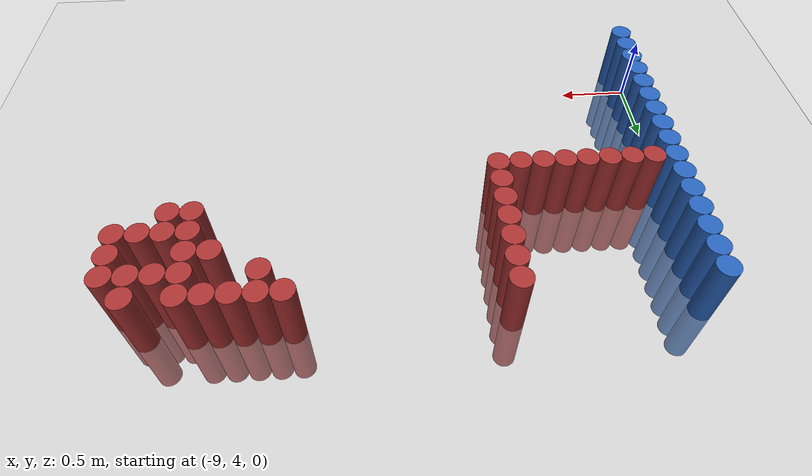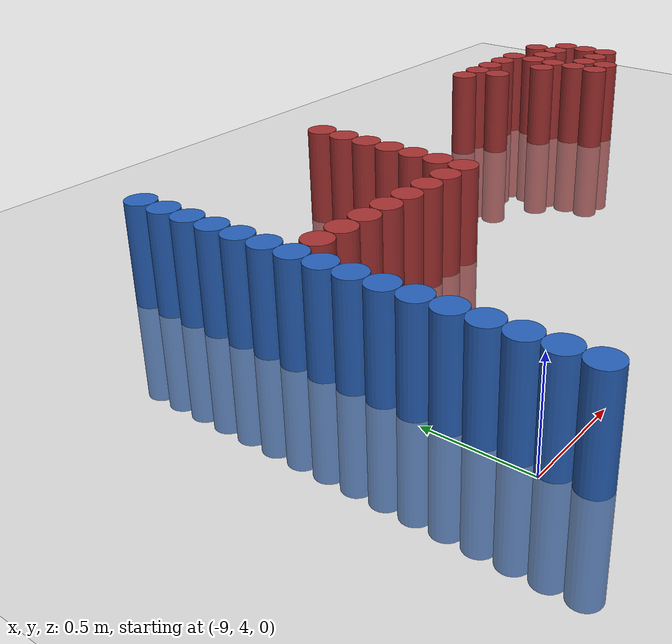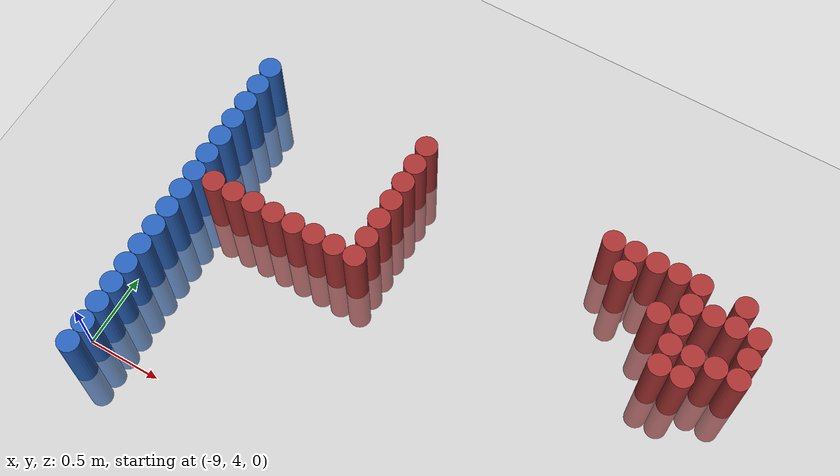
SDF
<sdf version="1.6">
 <world name="default">
  <model name="ground_plane">
   <static>1</static>
   <link name="link">
    <collision name="collision">
     <geometry><plane><normal>0 0 1</normal><size>100 100</size></plane></geometry>
     <surface><friction><ode><mu>100</mu><mu2>50</mu2></ode></friction></surface>
    </collision>
    <visual name="visual">
     <cast_shadows>0</cast_shadows>
     <geometry><plane><normal>0 0 1</normal><size>100 100</size></plane></geometry>
     <material>
      <script><uri>file://media/materials/scripts/gazebo.material</uri><name>Gazebo/Grey</name></script>
     </material>
    </visual>
   </link>
  </model>
  <model name="unit_cylinder_108">
   <static>1</static>
   <pose>-8.925000 3.825000 0.000000 0.000000 0.000000 0.000000</pose>
   <link name="link">
    <inertial>
     <mass>1</mass>
     <inertia><ixx>0.145833</ixx><ixy>0</ixy><ixz>0</ixz><iyy>0.145833</iyy><iyz>0</iyz><izz>0.125</izz></inertia>
    </inertial>
    <collision name="collision">
     <geometry><cylinder><radius>0.075000</radius><length>1</length></cylinder></geometry>
    </collision>
    <visual name="visual">
     <geometry><cylinder><radius>0.075000</radius><length>1</length></cylinder></geometry>
     <material>
      <ambient>0.152000 0.379000 0.720000 1</ambient>
      <diffuse>0.152000 0.379000 0.720000 1</diffuse>
     </material>
     <material>
      <script><name>Gazebo/Grey</name><uri>file://media/materials/scripts/gazebo.material</uri></script>
     </material>
    </visual>
   </link>
  </model>
  <model name="unit_cylinder_110">
   <static>1</static>
   <pose>-8.925000 3.975000 0.000000 0.000000 0.000000 0.000000</pose>
   <link name="link">
    <inertial>
     <mass>1</mass>
     <inertia><ixx>0.145833</ixx><ixy>0</ixy><ixz>0</ixz><iyy>0.145833</iyy><iyz>0</iyz><izz>0.125</izz></inertia>
    </inertial>
    <collision name="collision">
     <geometry><cylinder><radius>0.075000</radius><length>1</length></cylinder></geometry>
    </collision>
    <visual name="visual">
     <geometry><cylinder><radius>0.075000</radius><length>1</length></cylinder></geometry>
     <material>
      <ambient>0.152000 0.379000 0.720000 1</ambient>
      <diffuse>0.152000 0.379000 0.720000 1</diffuse>
     </material>
     <material>
      <script><name>Gazebo/Grey</name><uri>file://media/materials/scripts/gazebo.material</uri></script>
     </material>
    </visual>
   </link>
  </model>
  <model name="unit_cylinder_112">
   <static>1</static>
   <pose>-8.925000 4.125000 0.000000 0.000000 0.000000 0.000000</pose>
   <link name="link">
    <inertial>
     <mass>1</mass>
     <inertia><ixx>0.145833</ixx><ixy>0</ixy><ixz>0</ixz><iyy>0.145833</iyy><iyz>0</iyz><izz>0.125</izz></inertia>
    </inertial>
    <collision name="collision">
     <geometry><cylinder><radius>0.075000</radius><length>1</length></cylinder></geometry>
    </collision>
    <visual name="visual">
     <geometry><cylinder><radius>0.075000</radius><length>1</length></cylinder></geometry>
     <material>
      <ambient>0.152000 0.379000 0.720000 1</ambient>
      <diffuse>0.152000 0.379000 0.720000 1</diffuse>
     </material>
     <material>
      <script><name>Gazebo/Grey</name><uri>file://media/materials/scripts/gazebo.material</uri></script>
     </material>
    </visual>
   </link>
  </model>
  <model name="unit_cylinder_114">
   <static>1</static>
   <pose>-8.925000 4.275000 0.000000 0.000000 0.000000 0.000000</pose>
   <link name="link">
    <inertial>
     <mass>1</mass>
     <inertia><ixx>0.145833</ixx><ixy>0</ixy><ixz>0</ixz><iyy>0.145833</iyy><iyz>0</iyz><izz>0.125</izz></inertia>
    </inertial>
    <collision name="collision">
     <geometry><cylinder><radius>0.075000</radius><length>1</length></cylinder></geometry>
    </collision>
    <visual name="visual">
     <geometry><cylinder><radius>0.075000</radius><length>1</length></cylinder></geometry>
     <material>
      <ambient>0.152000 0.379000 0.720000 1</ambient>
      <diffuse>0.152000 0.379000 0.720000 1</diffuse>
     </material>
     <material>
      <script><name>Gazebo/Grey</name><uri>file://media/materials/scripts/gazebo.material</uri></script>
     </material>
    </visual>
   </link>
  </model>
  <model name="unit_cylinder_116">
   <static>1</static>
   <pose>-8.925000 4.425000 0.000000 0.000000 0.000000 0.000000</pose>
   <link name="link">
    <inertial>
     <mass>1</mass>
     <inertia><ixx>0.145833</ixx><ixy>0</ixy><ixz>0</ixz><iyy>0.145833</iyy><iyz>0</iyz><izz>0.125</izz></inertia>
    </inertial>
    <collision name="collision">
     <geometry><cylinder><radius>0.075000</radius><length>1</length></cylinder></geometry>
    </collision>
    <visual name="visual">
     <geometry><cylinder><radius>0.075000</radius><length>1</length></cylinder></geometry>
     <material>
      <ambient>0.152000 0.379000 0.720000 1</ambient>
      <diffuse>0.152000 0.379000 0.720000 1</diffuse>
     </material>
     <material>
      <script><name>Gazebo/Grey</name><uri>file://media/materials/scripts/gazebo.material</uri></script>
     </material>
    </visual>
   </link>
  </model>
  <model name="unit_cylinder_118">
   <static>1</static>
   <pose>-8.925000 4.575000 0.000000 0.000000 0.000000 0.000000</pose>
   <link name="link">
    <inertial>
     <mass>1</mass>
     <inertia><ixx>0.145833</ixx><ixy>0</ixy><ixz>0</ixz><iyy>0.145833</iyy><iyz>0</iyz><izz>0.125</izz></inertia>
    </inertial>
    <collision name="collision">
     <geometry><cylinder><radius>0.075000</radius><length>1</length></cylinder></geometry>
    </collision>
    <visual name="visual">
     <geometry><cylinder><radius>0.075000</radius><length>1</length></cylinder></geometry>
     <material>
      <ambient>0.152000 0.379000 0.720000 1</ambient>
      <diffuse>0.152000 0.379000 0.720000 1</diffuse>
     </material>
     <material>
      <script><name>Gazebo/Grey</name><uri>file://media/materials/scripts/gazebo.material</uri></script>
     </material>
    </visual>
   </link>
  </model>
  <model name="unit_cylinder_120">
   <static>1</static>
   <pose>-8.925000 4.725000 0.000000 0.000000 0.000000 0.000000</pose>
   <link name="link">
    <inertial>
     <mass>1</mass>
     <inertia><ixx>0.145833</ixx><ixy>0</ixy><ixz>0</ixz><iyy>0.145833</iyy><iyz>0</iyz><izz>0.125</izz></inertia>
    </inertial>
    <collision name="collision">
     <geometry><cylinder><radius>0.075000</radius><length>1</length></cylinder></geometry>
    </collision>
    <visual name="visual">
     <geometry><cylinder><radius>0.075000</radius><length>1</length></cylinder></geometry>
     <material>
      <ambient>0.152000 0.379000 0.720000 1</ambient>
      <diffuse>0.152000 0.379000 0.720000 1</diffuse>
     </material>
     <material>
      <script><name>Gazebo/Grey</name><uri>file://media/materials/scripts/gazebo.material</uri></script>
     </material>
    </visual>
   </link>
  </model>
  <model name="unit_cylinder_122">
   <static>1</static>
   <pose>-8.925000 4.875000 0.000000 0.000000 0.000000 0.000000</pose>
   <link name="link">
    <inertial>
     <mass>1</mass>
     <inertia><ixx>0.145833</ixx><ixy>0</ixy><ixz>0</ixz><iyy>0.145833</iyy><iyz>0</iyz><izz>0.125</izz></inertia>
    </inertial>
    <collision name="collision">
     <geometry><cylinder><radius>0.075000</radius><length>1</length></cylinder></geometry>
    </collision>
    <visual name="visual">
     <geometry><cylinder><radius>0.075000</radius><length>1</length></cylinder></geometry>
     <material>
      <ambient>0.152000 0.379000 0.720000 1</ambient>
      <diffuse>0.152000 0.379000 0.720000 1</diffuse>
     </material>
     <material>
      <script><name>Gazebo/Grey</name><uri>file://media/materials/scripts/gazebo.material</uri></script>
     </material>
    </visual>
   </link>
  </model>
  <model name="unit_cylinder_124">
   <static>1</static>
   <pose>-8.925000 5.025000 0.000000 0.000000 0.000000 0.000000</pose>
   <link name="link">
    <inertial>
     <mass>1</mass>
     <inertia><ixx>0.145833</ixx><ixy>0</ixy><ixz>0</ixz><iyy>0.145833</iyy><iyz>0</iyz><izz>0.125</izz></inertia>
    </inertial>
    <collision name="collision">
     <geometry><cylinder><radius>0.075000</radius><length>1</length></cylinder></geometry>
    </collision>
    <visual name="visual">
     <geometry><cylinder><radius>0.075000</radius><length>1</length></cylinder></geometry>
     <material>
      <ambient>0.152000 0.379000 0.720000 1</ambient>
      <diffuse>0.152000 0.379000 0.720000 1</diffuse>
     </material>
     <material>
      <script><name>Gazebo/Grey</name><uri>file://media/materials/scripts/gazebo.material</uri></script>
     </material>
    </visual>
   </link>
  </model>
  <model name="unit_cylinder_125">
   <static>1</static>
   <pose>-8.925000 5.175000 0.000000 0.000000 0.000000 0.000000</pose>
   <link name="link">
    <inertial>
     <mass>1</mass>
     <inertia><ixx>0.145833</ixx><ixy>0</ixy><ixz>0</ixz><iyy>0.145833</iyy><iyz>0</iyz><izz>0.125</izz></inertia>
    </inertial>
    <collision name="collision">
     <geometry><cylinder><radius>0.075000</radius><length>1</length></cylinder></geometry>
    </collision>
    <visual name="visual">
     <geometry><cylinder><radius>0.075000</radius><length>1</length></cylinder></geometry>
     <material>
      <ambient>0.152000 0.379000 0.720000 1</ambient>
      <diffuse>0.152000 0.379000 0.720000 1</diffuse>
     </material>
     <material>
      <script><name>Gazebo/Grey</name><uri>file://media/materials/scripts/gazebo.material</uri></script>
     </material>
    </visual>
   </link>
  </model>
  <model name="unit_cylinder_126">
   <static>1</static>
   <pose>-8.925000 5.325000 0.000000 0.000000 0.000000 0.000000</pose>
   <link name="link">
    <inertial>
     <mass>1</mass>
     <inertia><ixx>0.145833</ixx><ixy>0</ixy><ixz>0</ixz><iyy>0.145833</iyy><iyz>0</iyz><izz>0.125</izz></inertia>
    </inertial>
    <collision name="collision">
     <geometry><cylinder><radius>0.075000</radius><length>1</length></cylinder></geometry>
    </collision>
    <visual name="visual">
     <geometry><cylinder><radius>0.075000</radius><length>1</length></cylinder></geometry>
     <material>
      <ambient>0.152000 0.379000 0.720000 1</ambient>
      <diffuse>0.152000 0.379000 0.720000 1</diffuse>
     </material>
     <material>
      <script><name>Gazebo/Grey</name><uri>file://media/materials/scripts/gazebo.material</uri></script>
     </material>
    </visual>
   </link>
  </model>
  <model name="unit_cylinder_127">
   <static>1</static>
   <pose>-8.925000 5.475000 0.000000 0.000000 0.000000 0.000000</pose>
   <link name="link">
    <inertial>
     <mass>1</mass>
     <inertia><ixx>0.145833</ixx><ixy>0</ixy><ixz>0</ixz><iyy>0.145833</iyy><iyz>0</iyz><izz>0.125</izz></inertia>
    </inertial>
    <collision name="collision">
     <geometry><cylinder><radius>0.075000</radius><length>1</length></cylinder></geometry>
    </collision>
    <visual name="visual">
     <geometry><cylinder><radius>0.075000</radius><length>1</length></cylinder></geometry>
     <material>
      <ambient>0.152000 0.379000 0.720000 1</ambient>
      <diffuse>0.152000 0.379000 0.720000 1</diffuse>
     </material>
     <material>
      <script><name>Gazebo/Grey</name><uri>file://media/materials/scripts/gazebo.material</uri></script>
     </material>
    </visual>
   </link>
  </model>
  <model name="unit_cylinder_128">
   <static>1</static>
   <pose>-8.925000 5.625000 0.000000 0.000000 0.000000 0.000000</pose>
   <link name="link">
    <inertial>
     <mass>1</mass>
     <inertia><ixx>0.145833</ixx><ixy>0</ixy><ixz>0</ixz><iyy>0.145833</iyy><iyz>0</iyz><izz>0.125</izz></inertia>
    </inertial>
    <collision name="collision">
     <geometry><cylinder><radius>0.075000</radius><length>1</length></cylinder></geometry>
    </collision>
    <visual name="visual">
     <geometry><cylinder><radius>0.075000</radius><length>1</length></cylinder></geometry>
     <material>
      <ambient>0.152000 0.379000 0.720000 1</ambient>
      <diffuse>0.152000 0.379000 0.720000 1</diffuse>
     </material>
     <material>
      <script><name>Gazebo/Grey</name><uri>file://media/materials/scripts/gazebo.material</uri></script>
     </material>
    </visual>
   </link>
  </model>
  <model name="unit_cylinder_129">
   <static>1</static>
   <pose>-8.925000 5.775000 0.000000 0.000000 0.000000 0.000000</pose>
   <link name="link">
    <inertial>
     <mass>1</mass>
     <inertia><ixx>0.145833</ixx><ixy>0</ixy><ixz>0</ixz><iyy>0.145833</iyy><iyz>0</iyz><izz>0.125</izz></inertia>
    </inertial>
    <collision name="collision">
     <geometry><cylinder><radius>0.075000</radius><length>1</length></cylinder></geometry>
    </collision>
    <visual name="visual">
     <geometry><cylinder><radius>0.075000</radius><length>1</length></cylinder></geometry>
     <material>
      <ambient>0.152000 0.379000 0.720000 1</ambient>
      <diffuse>0.152000 0.379000 0.720000 1</diffuse>
     </material>
     <material>
      <script><name>Gazebo/Grey</name><uri>file://media/materials/scripts/gazebo.material</uri></script>
     </material>
    </visual>
   </link>
  </model>
  <model name="unit_cylinder_130">
   <static>1</static>
   <pose>-8.925000 5.925000 0.000000 0.000000 0.000000 0.000000</pose>
   <link name="link">
    <inertial>
     <mass>1</mass>
     <inertia><ixx>0.145833</ixx><ixy>0</ixy><ixz>0</ixz><iyy>0.145833</iyy><iyz>0</iyz><izz>0.125</izz></inertia>
    </inertial>
    <collision name="collision">
     <geometry><cylinder><radius>0.075000</radius><length>1</length></cylinder></geometry>
    </collision>
    <visual name="visual">
     <geometry><cylinder><radius>0.075000</radius><length>1</length></cylinder></geometry>
     <material>
      <ambient>0.152000 0.379000 0.720000 1</ambient>
      <diffuse>0.152000 0.379000 0.720000 1</diffuse>
     </material>
     <material>
      <script><name>Gazebo/Grey</name><uri>file://media/materials/scripts/gazebo.material</uri></script>
     </material>
    </visual>
   </link>
  </model>
  <model name="unit_cylinder_131">
   <static>1</static>
   <pose>-8.925000 6.075000 0.000000 0.000000 0.000000 0.000000</pose>
   <link name="link">
    <inertial>
     <mass>1</mass>
     <inertia><ixx>0.145833</ixx><ixy>0</ixy><ixz>0</ixz><iyy>0.145833</iyy><iyz>0</iyz><izz>0.125</izz></inertia>
    </inertial>
    <collision name="collision">
     <geometry><cylinder><radius>0.075000</radius><length>1</length></cylinder></geometry>
    </collision>
    <visual name="visual">
     <geometry><cylinder><radius>0.075000</radius><length>1</length></cylinder></geometry>
     <material>
      <ambient>0.152000 0.379000 0.720000 1</ambient>
      <diffuse>0.152000 0.379000 0.720000 1</diffuse>
     </material>
     <material>
      <script><name>Gazebo/Grey</name><uri>file://media/materials/scripts/gazebo.material</uri></script>
     </material>
    </visual>
   </link>
  </model>
  <model name="unit_cylinder_155">
   <static>1</static>
   <pose>-8.775000 5.175000 0.000000 0.000000 0.000000 0.000000</pose>
   <link name="link">
    <inertial>
     <mass>1</mass>
     <inertia><ixx>0.145833</ixx><ixy>0</ixy><ixz>0</ixz><iyy>0.145833</iyy><iyz>0</iyz><izz>0.125</izz></inertia>
    </inertial>
    <collision name="collision">
     <geometry><cylinder><radius>0.075000</radius><length>1</length></cylinder></geometry>
    </collision>
    <visual name="visual">
     <geometry><cylinder><radius>0.075000</radius><length>1</length></cylinder></geometry>
     <material>
      <ambient>0.648000 0.192000 0.192000 1</ambient>
      <diffuse>0.648000 0.192000 0.192000 1</diffuse>
     </material>
     <material>
      <script><name>Gazebo/Grey</name><uri>file://media/materials/scripts/gazebo.material</uri></script>
     </material>
    </visual>
   </link>
  </model>
  <model name="unit_cylinder_157">
   <static>1</static>
   <pose>-8.625000 5.175000 0.000000 0.000000 0.000000 0.000000</pose>
   <link name="link">
    <inertial>
     <mass>1</mass>
     <inertia><ixx>0.145833</ixx><ixy>0</ixy><ixz>0</ixz><iyy>0.145833</iyy><iyz>0</iyz><izz>0.125</izz></inertia>
    </inertial>
    <collision name="collision">
     <geometry><cylinder><radius>0.075000</radius><length>1</length></cylinder></geometry>
    </collision>
    <visual name="visual">
     <geometry><cylinder><radius>0.075000</radius><length>1</length></cylinder></geometry>
     <material>
      <ambient>0.648000 0.192000 0.192000 1</ambient>
      <diffuse>0.648000 0.192000 0.192000 1</diffuse>
     </material>
     <material>
      <script><name>Gazebo/Grey</name><uri>file://media/materials/scripts/gazebo.material</uri></script>
     </material>
    </visual>
   </link>
  </model>
  <model name="unit_cylinder_159">
   <static>1</static>
   <pose>-8.475000 5.175000 0.000000 0.000000 0.000000 0.000000</pose>
   <link name="link">
    <inertial>
     <mass>1</mass>
     <inertia><ixx>0.145833</ixx><ixy>0</ixy><ixz>0</ixz><iyy>0.145833</iyy><iyz>0</iyz><izz>0.125</izz></inertia>
    </inertial>
    <collision name="collision">
     <geometry><cylinder><radius>0.075000</radius><length>1</length></cylinder></geometry>
    </collision>
    <visual name="visual">
     <geometry><cylinder><radius>0.075000</radius><length>1</length></cylinder></geometry>
     <material>
      <ambient>0.648000 0.192000 0.192000 1</ambient>
      <diffuse>0.648000 0.192000 0.192000 1</diffuse>
     </material>
     <material>
      <script><name>Gazebo/Grey</name><uri>file://media/materials/scripts/gazebo.material</uri></script>
     </material>
    </visual>
   </link>
  </model>
  <model name="unit_cylinder_161">
   <static>1</static>
   <pose>-8.325000 5.175000 0.000000 0.000000 0.000000 0.000000</pose>
   <link name="link">
    <inertial>
     <mass>1</mass>
     <inertia><ixx>0.145833</ixx><ixy>0</ixy><ixz>0</ixz><iyy>0.145833</iyy><iyz>0</iyz><izz>0.125</izz></inertia>
    </inertial>
    <collision name="collision">
     <geometry><cylinder><radius>0.075000</radius><length>1</length></cylinder></geometry>
    </collision>
    <visual name="visual">
     <geometry><cylinder><radius>0.075000</radius><length>1</length></cylinder></geometry>
     <material>
      <ambient>0.648000 0.192000 0.192000 1</ambient>
      <diffuse>0.648000 0.192000 0.192000 1</diffuse>
     </material>
     <material>
      <script><name>Gazebo/Grey</name><uri>file://media/materials/scripts/gazebo.material</uri></script>
     </material>
    </visual>
   </link>
  </model>
  <model name="unit_cylinder_163">
   <static>1</static>
   <pose>-8.175000 5.175000 0.000000 0.000000 0.000000 0.000000</pose>
   <link name="link">
    <inertial>
     <mass>1</mass>
     <inertia><ixx>0.145833</ixx><ixy>0</ixy><ixz>0</ixz><iyy>0.145833</iyy><iyz>0</iyz><izz>0.125</izz></inertia>
    </inertial>
    <collision name="collision">
     <geometry><cylinder><radius>0.075000</radius><length>1</length></cylinder></geometry>
    </collision>
    <visual name="visual">
     <geometry><cylinder><radius>0.075000</radius><length>1</length></cylinder></geometry>
     <material>
      <ambient>0.648000 0.192000 0.192000 1</ambient>
      <diffuse>0.648000 0.192000 0.192000 1</diffuse>
     </material>
     <material>
      <script><name>Gazebo/Grey</name><uri>file://media/materials/scripts/gazebo.material</uri></script>
     </material>
    </visual>
   </link>
  </model>
  <model name="unit_cylinder_165">
   <static>1</static>
   <pose>-8.025000 5.175000 0.000000 0.000000 0.000000 0.000000</pose>
   <link name="link">
    <inertial>
     <mass>1</mass>
     <inertia><ixx>0.145833</ixx><ixy>0</ixy><ixz>0</ixz><iyy>0.145833</iyy><iyz>0</iyz><izz>0.125</izz></inertia>
    </inertial>
    <collision name="collision">
     <geometry><cylinder><radius>0.075000</radius><length>1</length></cylinder></geometry>
    </collision>
    <visual name="visual">
     <geometry><cylinder><radius>0.075000</radius><length>1</length></cylinder></geometry>
     <material>
      <ambient>0.648000 0.192000 0.192000 1</ambient>
      <diffuse>0.648000 0.192000 0.192000 1</diffuse>
     </material>
     <material>
      <script><name>Gazebo/Grey</name><uri>file://media/materials/scripts/gazebo.material</uri></script>
     </material>
    </visual>
   </link>
  </model>
  <model name="unit_cylinder_167">
   <static>1</static>
   <pose>-7.875000 5.175000 0.000000 0.000000 0.000000 0.000000</pose>
   <link name="link">
    <inertial>
     <mass>1</mass>
     <inertia><ixx>0.145833</ixx><ixy>0</ixy><ixz>0</ixz><iyy>0.145833</iyy><iyz>0</iyz><izz>0.125</izz></inertia>
    </inertial>
    <collision name="collision">
     <geometry><cylinder><radius>0.075000</radius><length>1</length></cylinder></geometry>
    </collision>
    <visual name="visual">
     <geometry><cylinder><radius>0.075000</radius><length>1</length></cylinder></geometry>
     <material>
      <ambient>0.648000 0.192000 0.192000 1</ambient>
      <diffuse>0.648000 0.192000 0.192000 1</diffuse>
     </material>
     <material>
      <script><name>Gazebo/Grey</name><uri>file://media/materials/scripts/gazebo.material</uri></script>
     </material>
    </visual>
   </link>
  </model>
  <model name="unit_cylinder_169">
   <static>1</static>
   <pose>-7.725000 5.175000 0.000000 0.000000 0.000000 0.000000</pose>
   <link name="link">
    <inertial>
     <mass>1</mass>
     <inertia><ixx>0.145833</ixx><ixy>0</ixy><ixz>0</ixz><iyy>0.145833</iyy><iyz>0</iyz><izz>0.125</izz></inertia>
    </inertial>
    <collision name="collision">
     <geometry><cylinder><radius>0.075000</radius><length>1</length></cylinder></geometry>
    </collision>
    <visual name="visual">
     <geometry><cylinder><radius>0.075000</radius><length>1</length></cylinder></geometry>
     <material>
      <ambient>0.648000 0.192000 0.192000 1</ambient>
      <diffuse>0.648000 0.192000 0.192000 1</diffuse>
     </material>
     <material>
      <script><name>Gazebo/Grey</name><uri>file://media/materials/scripts/gazebo.material</uri></script>
     </material>
    </visual>
   </link>
  </model>
  <model name="unit_cylinder_170">
   <static>1</static>
   <pose>-7.725000 5.325000 0.000000 0.000000 0.000000 0.000000</pose>
   <link name="link">
    <inertial>
     <mass>1</mass>
     <inertia><ixx>0.145833</ixx><ixy>0</ixy><ixz>0</ixz><iyy>0.145833</iyy><iyz>0</iyz><izz>0.125</izz></inertia>
    </inertial>
    <collision name="collision">
     <geometry><cylinder><radius>0.075000</radius><length>1</length></cylinder></geometry>
    </collision>
    <visual name="visual">
     <geometry><cylinder><radius>0.075000</radius><length>1</length></cylinder></geometry>
     <material>
      <ambient>0.648000 0.192000 0.192000 1</ambient>
      <diffuse>0.648000 0.192000 0.192000 1</diffuse>
     </material>
     <material>
      <script><name>Gazebo/Grey</name><uri>file://media/materials/scripts/gazebo.material</uri></script>
     </material>
    </visual>
   </link>
  </model>
  <model name="unit_cylinder_171">
   <static>1</static>
   <pose>-7.725000 5.475000 0.000000 0.000000 0.000000 0.000000</pose>
   <link name="link">
    <inertial>
     <mass>1</mass>
     <inertia><ixx>0.145833</ixx><ixy>0</ixy><ixz>0</ixz><iyy>0.145833</iyy><iyz>0</iyz><izz>0.125</izz></inertia>
    </inertial>
    <collision name="collision">
     <geometry><cylinder><radius>0.075000</radius><length>1</length></cylinder></geometry>
    </collision>
    <visual name="visual">
     <geometry><cylinder><radius>0.075000</radius><length>1</length></cylinder></geometry>
     <material>
      <ambient>0.648000 0.192000 0.192000 1</ambient>
      <diffuse>0.648000 0.192000 0.192000 1</diffuse>
     </material>
     <material>
      <script><name>Gazebo/Grey</name><uri>file://media/materials/scripts/gazebo.material</uri></script>
     </material>
    </visual>
   </link>
  </model>
  <model name="unit_cylinder_172">
   <static>1</static>
   <pose>-7.725000 5.625000 0.000000 0.000000 0.000000 0.000000</pose>
   <link name="link">
    <inertial>
     <mass>1</mass>
     <inertia><ixx>0.145833</ixx><ixy>0</ixy><ixz>0</ixz><iyy>0.145833</iyy><iyz>0</iyz><izz>0.125</izz></inertia>
    </inertial>
    <collision name="collision">
     <geometry><cylinder><radius>0.075000</radius><length>1</length></cylinder></geometry>
    </collision>
    <visual name="visual">
     <geometry><cylinder><radius>0.075000</radius><length>1</length></cylinder></geometry>
     <material>
      <ambient>0.648000 0.192000 0.192000 1</ambient>
      <diffuse>0.648000 0.192000 0.192000 1</diffuse>
     </material>
     <material>
      <script><name>Gazebo/Grey</name><uri>file://media/materials/scripts/gazebo.material</uri></script>
     </material>
    </visual>
   </link>
  </model>
  <model name="unit_cylinder_173">
   <static>1</static>
   <pose>-7.725000 5.775000 0.000000 0.000000 0.000000 0.000000</pose>
   <link name="link">
    <inertial>
     <mass>1</mass>
     <inertia><ixx>0.145833</ixx><ixy>0</ixy><ixz>0</ixz><iyy>0.145833</iyy><iyz>0</iyz><izz>0.125</izz></inertia>
    </inertial>
    <collision name="collision">
     <geometry><cylinder><radius>0.075000</radius><length>1</length></cylinder></geometry>
    </collision>
    <visual name="visual">
     <geometry><cylinder><radius>0.075000</radius><length>1</length></cylinder></geometry>
     <material>
      <ambient>0.648000 0.192000 0.192000 1</ambient>
      <diffuse>0.648000 0.192000 0.192000 1</diffuse>
     </material>
     <material>
      <script><name>Gazebo/Grey</name><uri>file://media/materials/scripts/gazebo.material</uri></script>
     </material>
    </visual>
   </link>
  </model>
  <model name="unit_cylinder_174">
   <static>1</static>
   <pose>-7.725000 5.925000 0.000000 0.000000 0.000000 0.000000</pose>
   <link name="link">
    <inertial>
     <mass>1</mass>
     <inertia><ixx>0.145833</ixx><ixy>0</ixy><ixz>0</ixz><iyy>0.145833</iyy><iyz>0</iyz><izz>0.125</izz></inertia>
    </inertial>
    <collision name="collision">
     <geometry><cylinder><radius>0.075000</radius><length>1</length></cylinder></geometry>
    </collision>
    <visual name="visual">
     <geometry><cylinder><radius>0.075000</radius><length>1</length></cylinder></geometry>
     <material>
      <ambient>0.648000 0.192000 0.192000 1</ambient>
      <diffuse>0.648000 0.192000 0.192000 1</diffuse>
     </material>
     <material>
      <script><name>Gazebo/Grey</name><uri>file://media/materials/scripts/gazebo.material</uri></script>
     </material>
    </visual>
   </link>
  </model>
  <model name="unit_cylinder_175">
   <static>1</static>
   <pose>-7.725000 6.075000 0.000000 0.000000 0.000000 0.000000</pose>
   <link name="link">
    <inertial>
     <mass>1</mass>
     <inertia><ixx>0.145833</ixx><ixy>0</ixy><ixz>0</ixz><iyy>0.145833</iyy><iyz>0</iyz><izz>0.125</izz></inertia>
    </inertial>
    <collision name="collision">
     <geometry><cylinder><radius>0.075000</radius><length>1</length></cylinder></geometry>
    </collision>
    <visual name="visual">
     <geometry><cylinder><radius>0.075000</radius><length>1</length></cylinder></geometry>
     <material>
      <ambient>0.648000 0.192000 0.192000 1</ambient>
      <diffuse>0.648000 0.192000 0.192000 1</diffuse>
     </material>
     <material>
      <script><name>Gazebo/Grey</name><uri>file://media/materials/scripts/gazebo.material</uri></script>
     </material>
    </visual>
   </link>
  </model>
  <model name="unit_cylinder_209">
   <static>1</static>
   <pose>-6.375000 6.075000 0.000000 0.000000 0.000000 0.000000</pose>
   <link name="link">
    <inertial>
     <mass>1</mass>
     <inertia><ixx>0.145833</ixx><ixy>0</ixy><ixz>0</ixz><iyy>0.145833</iyy><iyz>0</iyz><izz>0.125</izz></inertia>
    </inertial>
    <collision name="collision">
     <geometry><cylinder><radius>0.075000</radius><length>1</length></cylinder></geometry>
    </collision>
    <visual name="visual">
     <geometry><cylinder><radius>0.075000</radius><length>1</length></cylinder></geometry>
     <material>
      <ambient>0.648000 0.192000 0.192000 1</ambient>
      <diffuse>0.648000 0.192000 0.192000 1</diffuse>
     </material>
     <material>
      <script><name>Gazebo/Grey</name><uri>file://media/materials/scripts/gazebo.material</uri></script>
     </material>
    </visual>
   </link>
  </model>
  <model name="unit_cylinder_211">
   <static>1</static>
   <pose>-6.225000 5.925000 0.000000 0.000000 0.000000 0.000000</pose>
   <link name="link">
    <inertial>
     <mass>1</mass>
     <inertia><ixx>0.145833</ixx><ixy>0</ixy><ixz>0</ixz><iyy>0.145833</iyy><iyz>0</iyz><izz>0.125</izz></inertia>
    </inertial>
    <collision name="collision">
     <geometry><cylinder><radius>0.075000</radius><length>1</length></cylinder></geometry>
    </collision>
    <visual name="visual">
     <geometry><cylinder><radius>0.075000</radius><length>1</length></cylinder></geometry>
     <material>
      <ambient>0.648000 0.192000 0.192000 1</ambient>
      <diffuse>0.648000 0.192000 0.192000 1</diffuse>
     </material>
     <material>
      <script><name>Gazebo/Grey</name><uri>file://media/materials/scripts/gazebo.material</uri></script>
     </material>
    </visual>
   </link>
  </model>
  <model name="unit_cylinder_212">
   <static>1</static>
   <pose>-6.225000 6.075000 0.000000 0.000000 0.000000 0.000000</pose>
   <link name="link">
    <inertial>
     <mass>1</mass>
     <inertia><ixx>0.145833</ixx><ixy>0</ixy><ixz>0</ixz><iyy>0.145833</iyy><iyz>0</iyz><izz>0.125</izz></inertia>
    </inertial>
    <collision name="collision">
     <geometry><cylinder><radius>0.075000</radius><length>1</length></cylinder></geometry>
    </collision>
    <visual name="visual">
     <geometry><cylinder><radius>0.075000</radius><length>1</length></cylinder></geometry>
     <material>
      <ambient>0.648000 0.192000 0.192000 1</ambient>
      <diffuse>0.648000 0.192000 0.192000 1</diffuse>
     </material>
     <material>
      <script><name>Gazebo/Grey</name><uri>file://media/materials/scripts/gazebo.material</uri></script>
     </material>
    </visual>
   </link>
  </model>
  <model name="unit_cylinder_215">
   <static>1</static>
   <pose>-6.075000 6.075000 0.000000 0.000000 0.000000 0.000000</pose>
   <link name="link">
    <inertial>
     <mass>1</mass>
     <inertia><ixx>0.145833</ixx><ixy>0</ixy><ixz>0</ixz><iyy>0.145833</iyy><iyz>0</iyz><izz>0.125</izz></inertia>
    </inertial>
    <collision name="collision">
     <geometry><cylinder><radius>0.075000</radius><length>1</length></cylinder></geometry>
    </collision>
    <visual name="visual">
     <geometry><cylinder><radius>0.075000</radius><length>1</length></cylinder></geometry>
     <material>
      <ambient>0.648000 0.192000 0.192000 1</ambient>
      <diffuse>0.648000 0.192000 0.192000 1</diffuse>
     </material>
     <material>
      <script><name>Gazebo/Grey</name><uri>file://media/materials/scripts/gazebo.material</uri></script>
     </material>
    </visual>
   </link>
  </model>
  <model name="unit_cylinder_218">
   <static>1</static>
   <pose>-5.925000 5.775000 0.000000 0.000000 0.000000 0.000000</pose>
   <link name="link">
    <inertial>
     <mass>1</mass>
     <inertia><ixx>0.145833</ixx><ixy>0</ixy><ixz>0</ixz><iyy>0.145833</iyy><iyz>0</iyz><izz>0.125</izz></inertia>
    </inertial>
    <collision name="collision">
     <geometry><cylinder><radius>0.075000</radius><length>1</length></cylinder></geometry>
    </collision>
    <visual name="visual">
     <geometry><cylinder><radius>0.075000</radius><length>1</length></cylinder></geometry>
     <material>
      <ambient>0.648000 0.192000 0.192000 1</ambient>
      <diffuse>0.648000 0.192000 0.192000 1</diffuse>
     </material>
     <material>
      <script><name>Gazebo/Grey</name><uri>file://media/materials/scripts/gazebo.material</uri></script>
     </material>
    </visual>
   </link>
  </model>
  <model name="unit_cylinder_219">
   <static>1</static>
   <pose>-5.925000 6.075000 0.000000 0.000000 0.000000 0.000000</pose>
   <link name="link">
    <inertial>
     <mass>1</mass>
     <inertia><ixx>0.145833</ixx><ixy>0</ixy><ixz>0</ixz><iyy>0.145833</iyy><iyz>0</iyz><izz>0.125</izz></inertia>
    </inertial>
    <collision name="collision">
     <geometry><cylinder><radius>0.075000</radius><length>1</length></cylinder></geometry>
    </collision>
    <visual name="visual">
     <geometry><cylinder><radius>0.075000</radius><length>1</length></cylinder></geometry>
     <material>
      <ambient>0.648000 0.192000 0.192000 1</ambient>
      <diffuse>0.648000 0.192000 0.192000 1</diffuse>
     </material>
     <material>
      <script><name>Gazebo/Grey</name><uri>file://media/materials/scripts/gazebo.material</uri></script>
     </material>
    </visual>
   </link>
  </model>
  <model name="unit_cylinder_222">
   <static>1</static>
   <pose>-5.775000 5.475000 0.000000 0.000000 0.000000 0.000000</pose>
   <link name="link">
    <inertial>
     <mass>1</mass>
     <inertia><ixx>0.145833</ixx><ixy>0</ixy><ixz>0</ixz><iyy>0.145833</iyy><iyz>0</iyz><izz>0.125</izz></inertia>
    </inertial>
    <collision name="collision">
     <geometry><cylinder><radius>0.075000</radius><length>1</length></cylinder></geometry>
    </collision>
    <visual name="visual">
     <geometry><cylinder><radius>0.075000</radius><length>1</length></cylinder></geometry>
     <material>
      <ambient>0.648000 0.192000 0.192000 1</ambient>
      <diffuse>0.648000 0.192000 0.192000 1</diffuse>
     </material>
     <material>
      <script><name>Gazebo/Grey</name><uri>file://media/materials/scripts/gazebo.material</uri></script>
     </material>
    </visual>
   </link>
  </model>
  <model name="unit_cylinder_223">
   <static>1</static>
   <pose>-5.775000 5.625000 0.000000 0.000000 0.000000 0.000000</pose>
   <link name="link">
    <inertial>
     <mass>1</mass>
     <inertia><ixx>0.145833</ixx><ixy>0</ixy><ixz>0</ixz><iyy>0.145833</iyy><iyz>0</iyz><izz>0.125</izz></inertia>
    </inertial>
    <collision name="collision">
     <geometry><cylinder><radius>0.075000</radius><length>1</length></cylinder></geometry>
    </collision>
    <visual name="visual">
     <geometry><cylinder><radius>0.075000</radius><length>1</length></cylinder></geometry>
     <material>
      <ambient>0.648000 0.192000 0.192000 1</ambient>
      <diffuse>0.648000 0.192000 0.192000 1</diffuse>
     </material>
     <material>
      <script><name>Gazebo/Grey</name><uri>file://media/materials/scripts/gazebo.material</uri></script>
     </material>
    </visual>
   </link>
  </model>
  <model name="unit_cylinder_224">
   <static>1</static>
   <pose>-5.775000 5.775000 0.000000 0.000000 0.000000 0.000000</pose>
   <link name="link">
    <inertial>
     <mass>1</mass>
     <inertia><ixx>0.145833</ixx><ixy>0</ixy><ixz>0</ixz><iyy>0.145833</iyy><iyz>0</iyz><izz>0.125</izz></inertia>
    </inertial>
    <collision name="collision">
     <geometry><cylinder><radius>0.075000</radius><length>1</length></cylinder></geometry>
    </collision>
    <visual name="visual">
     <geometry><cylinder><radius>0.075000</radius><length>1</length></cylinder></geometry>
     <material>
      <ambient>0.648000 0.192000 0.192000 1</ambient>
      <diffuse>0.648000 0.192000 0.192000 1</diffuse>
     </material>
     <material>
      <script><name>Gazebo/Grey</name><uri>file://media/materials/scripts/gazebo.material</uri></script>
     </material>
    </visual>
   </link>
  </model>
  <model name="unit_cylinder_225">
   <static>1</static>
   <pose>-5.775000 5.925000 0.000000 0.000000 0.000000 0.000000</pose>
   <link name="link">
    <inertial>
     <mass>1</mass>
     <inertia><ixx>0.145833</ixx><ixy>0</ixy><ixz>0</ixz><iyy>0.145833</iyy><iyz>0</iyz><izz>0.125</izz></inertia>
    </inertial>
    <collision name="collision">
     <geometry><cylinder><radius>0.075000</radius><length>1</length></cylinder></geometry>
    </collision>
    <visual name="visual">
     <geometry><cylinder><radius>0.075000</radius><length>1</length></cylinder></geometry>
     <material>
      <ambient>0.648000 0.192000 0.192000 1</ambient>
      <diffuse>0.648000 0.192000 0.192000 1</diffuse>
     </material>
     <material>
      <script><name>Gazebo/Grey</name><uri>file://media/materials/scripts/gazebo.material</uri></script>
     </material>
    </visual>
   </link>
  </model>
  <model name="unit_cylinder_226">
   <static>1</static>
   <pose>-5.775000 6.075000 0.000000 0.000000 0.000000 0.000000</pose>
   <link name="link">
    <inertial>
     <mass>1</mass>
     <inertia><ixx>0.145833</ixx><ixy>0</ixy><ixz>0</ixz><iyy>0.145833</iyy><iyz>0</iyz><izz>0.125</izz></inertia>
    </inertial>
    <collision name="collision">
     <geometry><cylinder><radius>0.075000</radius><length>1</length></cylinder></geometry>
    </collision>
    <visual name="visual">
     <geometry><cylinder><radius>0.075000</radius><length>1</length></cylinder></geometry>
     <material>
      <ambient>0.648000 0.192000 0.192000 1</ambient>
      <diffuse>0.648000 0.192000 0.192000 1</diffuse>
     </material>
     <material>
      <script><name>Gazebo/Grey</name><uri>file://media/materials/scripts/gazebo.material</uri></script>
     </material>
    </visual>
   </link>
  </model>
  <model name="unit_cylinder_231">
   <static>1</static>
   <pose>-5.625000 5.475000 0.000000 0.000000 0.000000 0.000000</pose>
   <link name="link">
    <inertial>
     <mass>1</mass>
     <inertia><ixx>0.145833</ixx><ixy>0</ixy><ixz>0</ixz><iyy>0.145833</iyy><iyz>0</iyz><izz>0.125</izz></inertia>
    </inertial>
    <collision name="collision">
     <geometry><cylinder><radius>0.075000</radius><length>1</length></cylinder></geometry>
    </collision>
    <visual name="visual">
     <geometry><cylinder><radius>0.075000</radius><length>1</length></cylinder></geometry>
     <material>
      <ambient>0.648000 0.192000 0.192000 1</ambient>
      <diffuse>0.648000 0.192000 0.192000 1</diffuse>
     </material>
     <material>
      <script><name>Gazebo/Grey</name><uri>file://media/materials/scripts/gazebo.material</uri></script>
     </material>
    </visual>
   </link>
  </model>
  <model name="unit_cylinder_232">
   <static>1</static>
   <pose>-5.625000 5.625000 0.000000 0.000000 0.000000 0.000000</pose>
   <link name="link">
    <inertial>
     <mass>1</mass>
     <inertia><ixx>0.145833</ixx><ixy>0</ixy><ixz>0</ixz><iyy>0.145833</iyy><iyz>0</iyz><izz>0.125</izz></inertia>
    </inertial>
    <collision name="collision">
     <geometry><cylinder><radius>0.075000</radius><length>1</length></cylinder></geometry>
    </collision>
    <visual name="visual">
     <geometry><cylinder><radius>0.075000</radius><length>1</length></cylinder></geometry>
     <material>
      <ambient>0.648000 0.192000 0.192000 1</ambient>
      <diffuse>0.648000 0.192000 0.192000 1</diffuse>
     </material>
     <material>
      <script><name>Gazebo/Grey</name><uri>file://media/materials/scripts/gazebo.material</uri></script>
     </material>
    </visual>
   </link>
  </model>
  <model name="unit_cylinder_233">
   <static>1</static>
   <pose>-5.625000 5.925000 0.000000 0.000000 0.000000 0.000000</pose>
   <link name="link">
    <inertial>
     <mass>1</mass>
     <inertia><ixx>0.145833</ixx><ixy>0</ixy><ixz>0</ixz><iyy>0.145833</iyy><iyz>0</iyz><izz>0.125</izz></inertia>
    </inertial>
    <collision name="collision">
     <geometry><cylinder><radius>0.075000</radius><length>1</length></cylinder></geometry>
    </collision>
    <visual name="visual">
     <geometry><cylinder><radius>0.075000</radius><length>1</length></cylinder></geometry>
     <material>
      <ambient>0.648000 0.192000 0.192000 1</ambient>
      <diffuse>0.648000 0.192000 0.192000 1</diffuse>
     </material>
     <material>
      <script><name>Gazebo/Grey</name><uri>file://media/materials/scripts/gazebo.material</uri></script>
     </material>
    </visual>
   </link>
  </model>
  <model name="unit_cylinder_237">
   <static>1</static>
   <pose>-5.475000 5.625000 0.000000 0.000000 0.000000 0.000000</pose>
   <link name="link">
    <inertial>
     <mass>1</mass>
     <inertia><ixx>0.145833</ixx><ixy>0</ixy><ixz>0</ixz><iyy>0.145833</iyy><iyz>0</iyz><izz>0.125</izz></inertia>
    </inertial>
    <collision name="collision">
     <geometry><cylinder><radius>0.075000</radius><length>1</length></cylinder></geometry>
    </collision>
    <visual name="visual">
     <geometry><cylinder><radius>0.075000</radius><length>1</length></cylinder></geometry>
     <material>
      <ambient>0.648000 0.192000 0.192000 1</ambient>
      <diffuse>0.648000 0.192000 0.192000 1</diffuse>
     </material>
     <material>
      <script><name>Gazebo/Grey</name><uri>file://media/materials/scripts/gazebo.material</uri></script>
     </material>
    </visual>
   </link>
  </model>
  <model name="unit_cylinder_238">
   <static>1</static>
   <pose>-5.475000 5.925000 0.000000 0.000000 0.000000 0.000000</pose>
   <link name="link">
    <inertial>
     <mass>1</mass>
     <inertia><ixx>0.145833</ixx><ixy>0</ixy><ixz>0</ixz><iyy>0.145833</iyy><iyz>0</iyz><izz>0.125</izz></inertia>
    </inertial>
    <collision name="collision">
     <geometry><cylinder><radius>0.075000</radius><length>1</length></cylinder></geometry>
    </collision>
    <visual name="visual">
     <geometry><cylinder><radius>0.075000</radius><length>1</length></cylinder></geometry>
     <material>
      <ambient>0.648000 0.192000 0.192000 1</ambient>
      <diffuse>0.648000 0.192000 0.192000 1</diffuse>
     </material>
     <material>
      <script><name>Gazebo/Grey</name><uri>file://media/materials/scripts/gazebo.material</uri></script>
     </material>
    </visual>
   </link>
  </model>
  <model name="unit_cylinder_239">
   <static>1</static>
   <pose>-5.475000 6.075000 0.000000 0.000000 0.000000 0.000000</pose>
   <link name="link">
    <inertial>
     <mass>1</mass>
     <inertia><ixx>0.145833</ixx><ixy>0</ixy><ixz>0</ixz><iyy>0.145833</iyy><iyz>0</iyz><izz>0.125</izz></inertia>
    </inertial>
    <collision name="collision">
     <geometry><cylinder><radius>0.075000</radius><length>1</length></cylinder></geometry>
    </collision>
    <visual name="visual">
     <geometry><cylinder><radius>0.075000</radius><length>1</length></cylinder></geometry>
     <material>
      <ambient>0.648000 0.192000 0.192000 1</ambient>
      <diffuse>0.648000 0.192000 0.192000 1</diffuse>
     </material>
     <material>
      <script><name>Gazebo/Grey</name><uri>file://media/materials/scripts/gazebo.material</uri></script>
     </material>
    </visual>
   </link>
  </model>
  <model name="unit_cylinder_246">
   <static>1</static>
   <pose>-5.325000 5.625000 0.000000 0.000000 0.000000 0.000000</pose>
   <link name="link">
    <inertial>
     <mass>1</mass>
     <inertia><ixx>0.145833</ixx><ixy>0</ixy><ixz>0</ixz><iyy>0.145833</iyy><iyz>0</iyz><izz>0.125</izz></inertia>
    </inertial>
    <collision name="collision">
     <geometry><cylinder><radius>0.075000</radius><length>1</length></cylinder></geometry>
    </collision>
    <visual name="visual">
     <geometry><cylinder><radius>0.075000</radius><length>1</length></cylinder></geometry>
     <material>
      <ambient>0.648000 0.192000 0.192000 1</ambient>
      <diffuse>0.648000 0.192000 0.192000 1</diffuse>
     </material>
     <material>
      <script><name>Gazebo/Grey</name><uri>file://media/materials/scripts/gazebo.material</uri></script>
     </material>
    </visual>
   </link>
  </model>
  <model name="unit_cylinder_247">
   <static>1</static>
   <pose>-5.325000 5.775000 0.000000 0.000000 0.000000 0.000000</pose>
   <link name="link">
    <inertial>
     <mass>1</mass>
     <inertia><ixx>0.145833</ixx><ixy>0</ixy><ixz>0</ixz><iyy>0.145833</iyy><iyz>0</iyz><izz>0.125</izz></inertia>
    </inertial>
    <collision name="collision">
     <geometry><cylinder><radius>0.075000</radius><length>1</length></cylinder></geometry>
    </collision>
    <visual name="visual">
     <geometry><cylinder><radius>0.075000</radius><length>1</length></cylinder></geometry>
     <material>
      <ambient>0.648000 0.192000 0.192000 1</ambient>
      <diffuse>0.648000 0.192000 0.192000 1</diffuse>
     </material>
     <material>
      <script><name>Gazebo/Grey</name><uri>file://media/materials/scripts/gazebo.material</uri></script>
     </material>
    </visual>
   </link>
  </model>
  <model name="unit_cylinder_248">
   <static>1</static>
   <pose>-5.325000 5.925000 0.000000 0.000000 0.000000 0.000000</pose>
   <link name="link">
    <inertial>
     <mass>1</mass>
     <inertia><ixx>0.145833</ixx><ixy>0</ixy><ixz>0</ixz><iyy>0.145833</iyy><iyz>0</iyz><izz>0.125</izz></inertia>
    </inertial>
    <collision name="collision">
     <geometry><cylinder><radius>0.075000</radius><length>1</length></cylinder></geometry>
    </collision>
    <visual name="visual">
     <geometry><cylinder><radius>0.075000</radius><length>1</length></cylinder></geometry>
     <material>
      <ambient>0.648000 0.192000 0.192000 1</ambient>
      <diffuse>0.648000 0.192000 0.192000 1</diffuse>
     </material>
     <material>
      <script><name>Gazebo/Grey</name><uri>file://media/materials/scripts/gazebo.material</uri></script>
     </material>
    </visual>
   </link>
  </model>
 </world>
</sdf>
